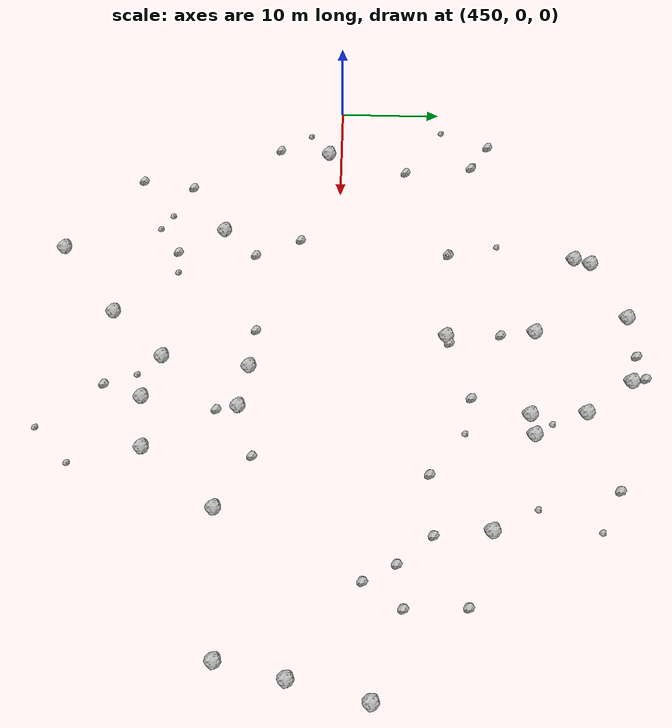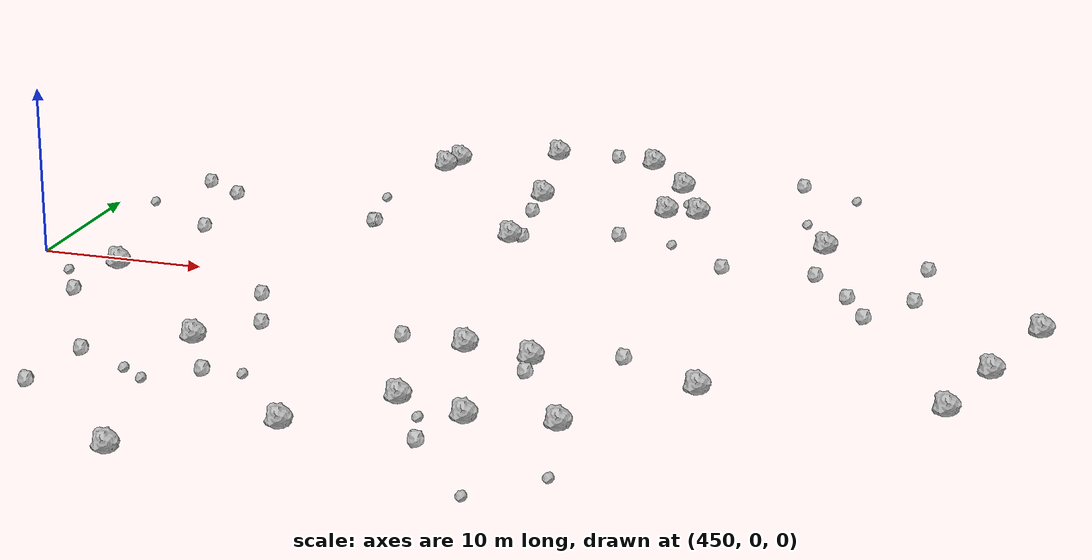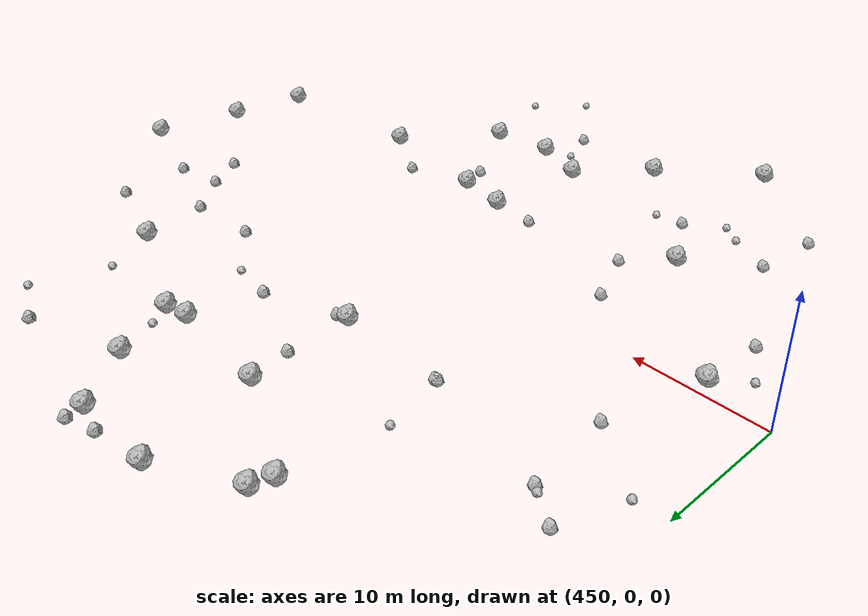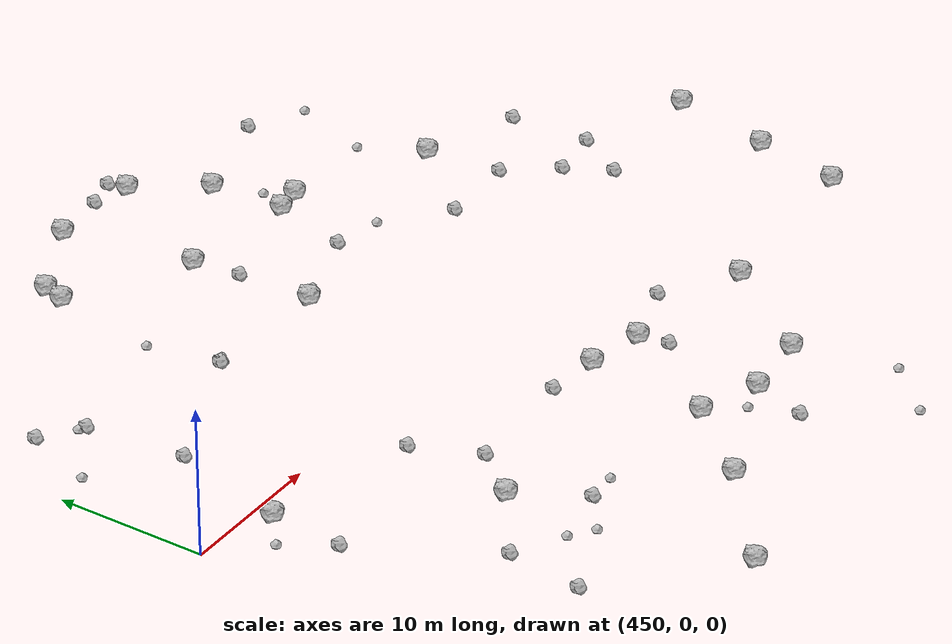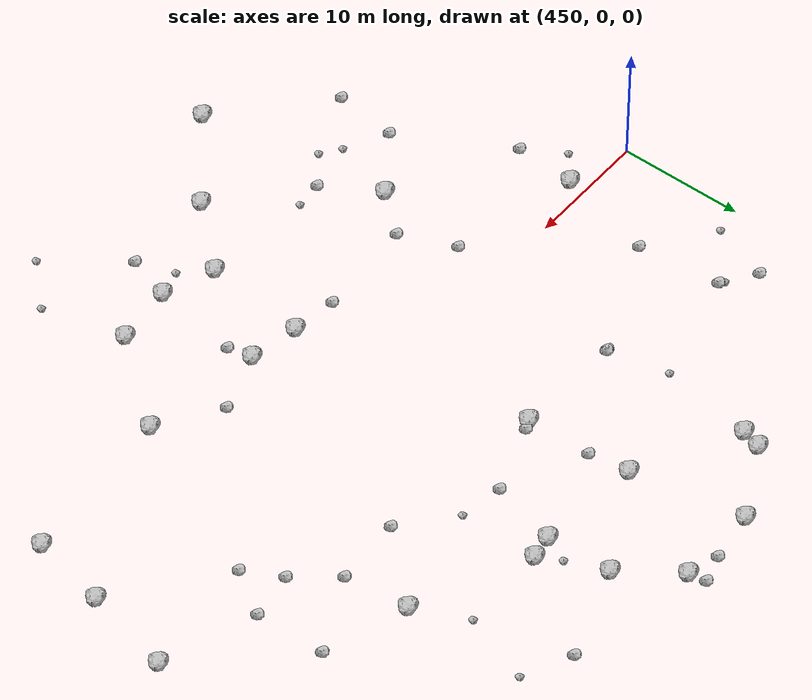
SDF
<sdf version="1.6">
 <world name="default">
  <include><uri>model://sun</uri></include>
  <model name="rock1_12_4">
   <include><uri>model://rock1</uri><pose>507.0228738060041 -3.213700141944514 0.5 0 0 0</pose></include>
  </model>
  <model name="rock1_12_5">
   <include><uri>model://rock1</uri><pose>467.61501371080374 24.572924854348067 0.5 0 0 0</pose></include>
  </model>
  <model name="rock1_12_6">
   <include><uri>model://rock1</uri><pose>478.4770279773383 -16.22748230761984 0.5 0 0 0</pose></include>
  </model>
  <model name="rock1_12_7">
   <include><uri>model://rock1</uri><pose>479.9615581197407 27.520059388217284 0.5 0 0 0</pose></include>
  </model>
  <model name="rock1_12_8">
   <include><uri>model://rock1</uri><pose>485.3677308681052 18.278890748811 0.5 0 0 0</pose></include>
  </model>
  <model name="rock1_12_9">
   <include><uri>model://rock1</uri><pose>479.2818260682353 -8.022914752488404 0.5 0 0 0</pose></include>
  </model>
  <model name="rock1_12_10">
   <include><uri>model://rock1</uri><pose>455.37447025499614 -1.2876363266887978 0.5 0 0 0</pose></include>
  </model>
  <model name="rock1_12_11">
   <include><uri>model://rock1</uri><pose>487.4372973826271 -17.164689085380697 0.5 0 0 0</pose></include>
  </model>
  <model name="rock1_12_12">
   <include><uri>model://rock1</uri><pose>464.7261290064186 -11.332843303941182 0.5 0 0 0</pose></include>
  </model>
  <model name="rock1_12_13">
   <include><uri>model://rock1</uri><pose>483.14358365961175 23.13644225834861 0.5 0 0 0</pose></include>
  </model>
  <model name="rock1_12_14">
   <include><uri>model://rock1</uri><pose>492.8424623307237 -10.266297259739545 0.5 0 0 0</pose></include>
  </model>
  <model name="rock1_12_15">
   <include><uri>model://rock1</uri><pose>494.3086075869409 14.146022761396694 0.5 0 0 0</pose></include>
  </model>
  <model name="rock1_12_16">
   <include><uri>model://rock1</uri><pose>475.1200303127477 18.79674551245651 0.5 0 0 0</pose></include>
  </model>
  <model name="rock1_12_17">
   <include><uri>model://rock1</uri><pose>508.6491266229935 3.7863003045258807 0.5 0 0 0</pose></include>
  </model>
  <model name="rock1_12_18">
   <include><uri>model://rock1</uri><pose>505.72409232736226 -9.262747800121044 0.5 0 0 0</pose></include>
  </model>
  <model name="rock1_12_19">
   <include><uri>model://rock1</uri><pose>475.72314802122645 10.403885031784931 0.5 0 0 0</pose></include>
  </model>
  <model name="rock1_12_20">
   <include><uri>model://rock1</uri><pose>467.1475694881754 23.021048291514468 0.5 0 0 0</pose></include>
  </model>
  <model name="rock1_12_21">
   <include><uri>model://rock1</uri><pose>483.274428195844 -8.777590107169615 0.5 0 0 0</pose></include>
  </model>
  <model name="rock1_12_22">
   <include><uri>model://rock1</uri><pose>482.5966997687795 -17.708806440889134 0.5 0 0 0</pose></include>
  </model>
  <model name="rock1_12_23">
   <include><uri>model://rock1</uri><pose>467.0506777915605 -26.89848013240529 0.5 0 0 0</pose></include>
  </model>
  <model name="rock1_12_24">
   <include><uri>model://rock1</uri><pose>473.950956645337 -21.276574147431838 0.5 0 0 0</pose></include>
  </model>
  <model name="rock1_12_25">
   <include><uri>model://rock1</uri><pose>473.4128759707001 27.666813049762816 0.5 0 0 0</pose></include>
  </model>
  <model name="rock1_12_26">
   <include><uri>model://rock1</uri><pose>483.43686596389176 17.96159897545779 0.5 0 0 0</pose></include>
  </model>
  <model name="rock2_12_0">
   <include><uri>model://rock2</uri><pose>466.79250374437555 10.774504492173527 0.3 0 0 0</pose></include>
  </model>
  <model name="rock2_12_1">
   <include><uri>model://rock2</uri><pose>476.3803185777956 10.726719127562632 0.3 0 0 0</pose></include>
  </model>
  <model name="rock2_12_2">
   <include><uri>model://rock2</uri><pose>466.9181570291091 10.803861963832063 0.3 0 0 0</pose></include>
  </model>
  <model name="rock2_12_3">
   <include><uri>model://rock2</uri><pose>479.6014698992441 28.882218768853804 0.3 0 0 0</pose></include>
  </model>
  <model name="rock2_12_4">
   <include><uri>model://rock2</uri><pose>494.80841429385913 9.035193684195974 0.3 0 0 0</pose></include>
  </model>
  <model name="rock2_12_5">
   <include><uri>model://rock2</uri><pose>465.56485212929306 -3.7489740577097237 0.3 0 0 0</pose></include>
  </model>
  <model name="rock2_12_6">
   <include><uri>model://rock2</uri><pose>457.371197149071 6.59874748171503 0.3 0 0 0</pose></include>
  </model>
  <model name="rock2_12_7">
   <include><uri>model://rock2</uri><pose>477.34389367351037 28.232040456955545 0.3 0 0 0</pose></include>
  </model>
  <model name="rock2_12_8">
   <include><uri>model://rock2</uri><pose>481.9233022760701 12.64694703457566 0.3 0 0 0</pose></include>
  </model>
  <model name="rock2_12_9">
   <include><uri>model://rock2</uri><pose>501.11245277391225 6.412906005052072 0.3 0 0 0</pose></include>
  </model>
  <model name="rock2_12_10">
   <include><uri>model://rock2</uri><pose>459.05975245672477 -19.91944139266006 0.3 0 0 0</pose></include>
  </model>
  <model name="rock2_12_11">
   <include><uri>model://rock2</uri><pose>481.3363016924907 -21.32971616542072 0.3 0 0 0</pose></include>
  </model>
  <model name="rock2_12_12">
   <include><uri>model://rock2</uri><pose>467.38021152887035 -8.07229379257236 0.3 0 0 0</pose></include>
  </model>
  <model name="rock2_12_13">
   <include><uri>model://rock2</uri><pose>487.97864401648013 -7.182033727947438 0.3 0 0 0</pose></include>
  </model>
  <model name="rock2_12_14">
   <include><uri>model://rock2</uri><pose>454.9645840066485 -6.213792746664467 0.3 0 0 0</pose></include>
  </model>
  <model name="rock2_12_15">
   <include><uri>model://rock2</uri><pose>497.35423631240536 5.8524745446985165 0.3 0 0 0</pose></include>
  </model>
  <model name="rock2_12_16">
   <include><uri>model://rock2</uri><pose>475.475116812038 15.581979963709358 0.3 0 0 0</pose></include>
  </model>
  <model name="rock2_12_17">
   <include><uri>model://rock2</uri><pose>475.5149493736735 -7.5704563990030955 0.3 0 0 0</pose></include>
  </model>
  <model name="rock2_12_18">
   <include><uri>model://rock2</uri><pose>467.2229810231458 -15.678295249790855 0.3 0 0 0</pose></include>
  </model>
  <model name="rock2_12_19">
   <include><uri>model://rock2</uri><pose>459.71559143406967 -14.821200072611077 0.3 0 0 0</pose></include>
  </model>
  <model name="rock2_12_20">
   <include><uri>model://rock2</uri><pose>456.651877868044 13.256413441445915 0.3 0 0 0</pose></include>
  </model>
  <model name="rock2_12_21">
   <include><uri>model://rock2</uri><pose>498.9009340152106 2.9191123548972513 0.3 0 0 0</pose></include>
  </model>
  <model name="rock2_12_22">
   <include><uri>model://rock2</uri><pose>489.30501893404136 8.75268281810363 0.3 0 0 0</pose></include>
  </model>
  <model name="rock2_12_23">
   <include><uri>model://rock2</uri><pose>483.5954762154677 -10.732169929108075 0.3 0 0 0</pose></include>
  </model>
  <model name="rock2_12_24">
   <include><uri>model://rock2</uri><pose>454.0493014858204 15.051752651100031 0.3 0 0 0</pose></include>
  </model>
  <model name="rock2_12_25">
   <include><uri>model://rock2</uri><pose>500.8873418216854 11.958959853514429 0.3 0 0 0</pose></include>
  </model>
  <model name="rock2_12_26">
   <include><uri>model://rock2</uri><pose>490.41665839854574 25.623328476998978 0.3 0 0 0</pose></include>
  </model>
  <model name="rock3_12_0">
   <include><uri>model://rock3</uri><pose>480.28564661304966 -18.377742532907735 0.2 0 0 0</pose></include>
  </model>
  <model name="rock3_12_1">
   <include><uri>model://rock3</uri><pose>463.0496542905845 -16.626800038373275 0.2 0 0 0</pose></include>
  </model>
  <model name="rock3_12_2">
   <include><uri>model://rock3</uri><pose>488.9746086087245 -23.77941016716275 0.2 0 0 0</pose></include>
  </model>
  <model name="rock3_12_3">
   <include><uri>model://rock3</uri><pose>485.35416716523906 11.976877512023599 0.2 0 0 0</pose></include>
  </model>
  <model name="rock3_12_4">
   <include><uri>model://rock3</uri><pose>492.24434304341935 18.247932059280707 0.2 0 0 0</pose></include>
  </model>
  <model name="rock3_12_5">
   <include><uri>model://rock3</uri><pose>452.30701381392544 10.249577310591498 0.2 0 0 0</pose></include>
  </model>
  <model name="rock3_12_6">
   <include><uri>model://rock3</uri><pose>456.2400751813518 13.48684733957409 0.2 0 0 0</pose></include>
  </model>
  <model name="rock3_12_7">
   <include><uri>model://rock3</uri><pose>484.24545413099315 19.96834645928827 0.2 0 0 0</pose></include>
  </model>
  <model name="rock3_12_8">
   <include><uri>model://rock3</uri><pose>453.0411392894919 -3.1586722010468833 0.2 0 0 0</pose></include>
  </model>
  <model name="rock3_12_9">
   <include><uri>model://rock3</uri><pose>469.41941845456205 -15.551122232369053 0.2 0 0 0</pose></include>
  </model>
  <model name="rock3_12_10">
   <include><uri>model://rock3</uri><pose>494.17174583084636 23.743211800656027 0.2 0 0 0</pose></include>
  </model>
  <model name="rock3_12_11">
   <include><uri>model://rock3</uri><pose>485.6915435676554 -27.121479611001998 0.2 0 0 0</pose></include>
  </model>
  <model name="rock3_12_12">
   <include><uri>model://rock3</uri><pose>465.8078557855291 15.542075095521945 0.2 0 0 0</pose></include>
  </model>
  <model name="rock3_12_13">
   <include><uri>model://rock3</uri><pose>464.55723457729016 -17.716296198933833 0.2 0 0 0</pose></include>
  </model>
 </world>
</sdf>
